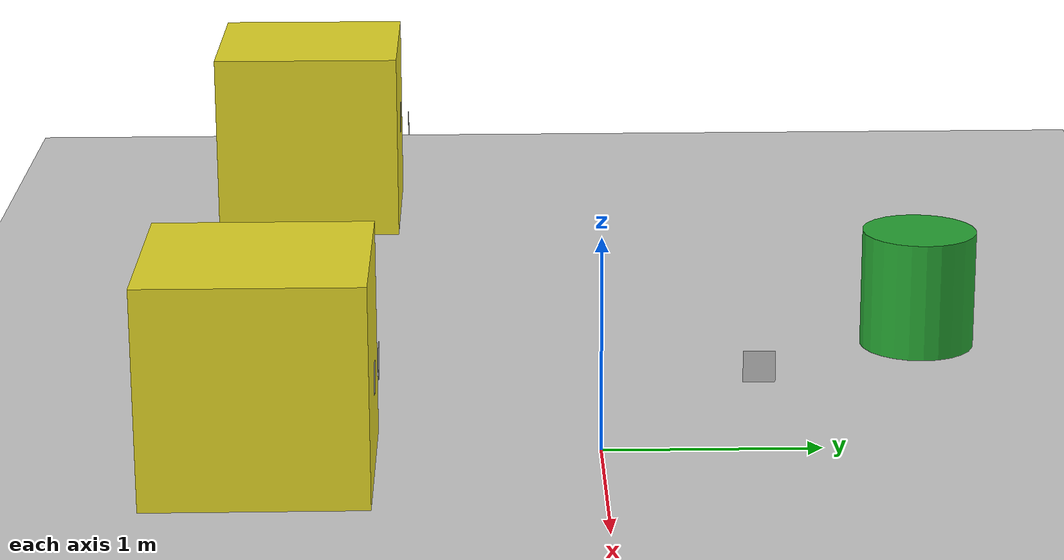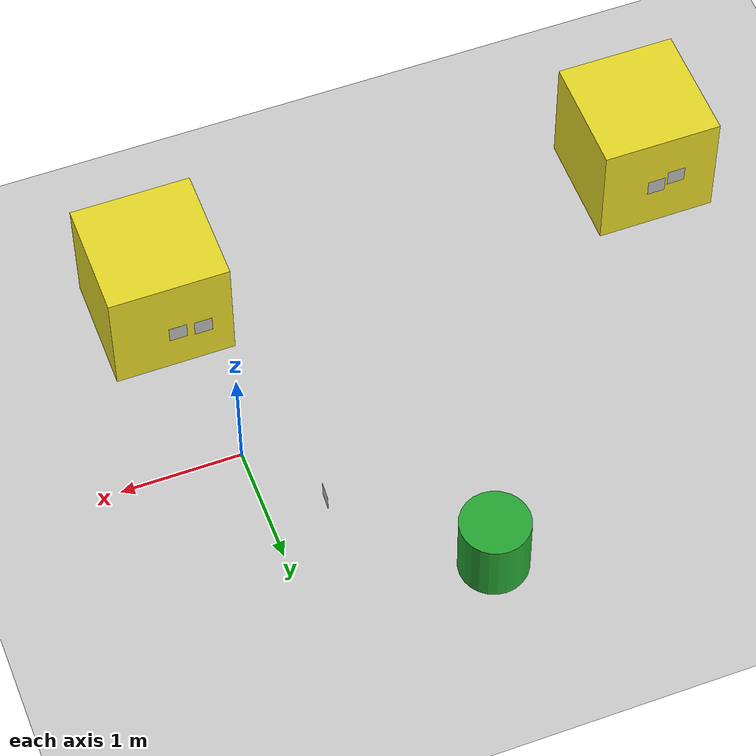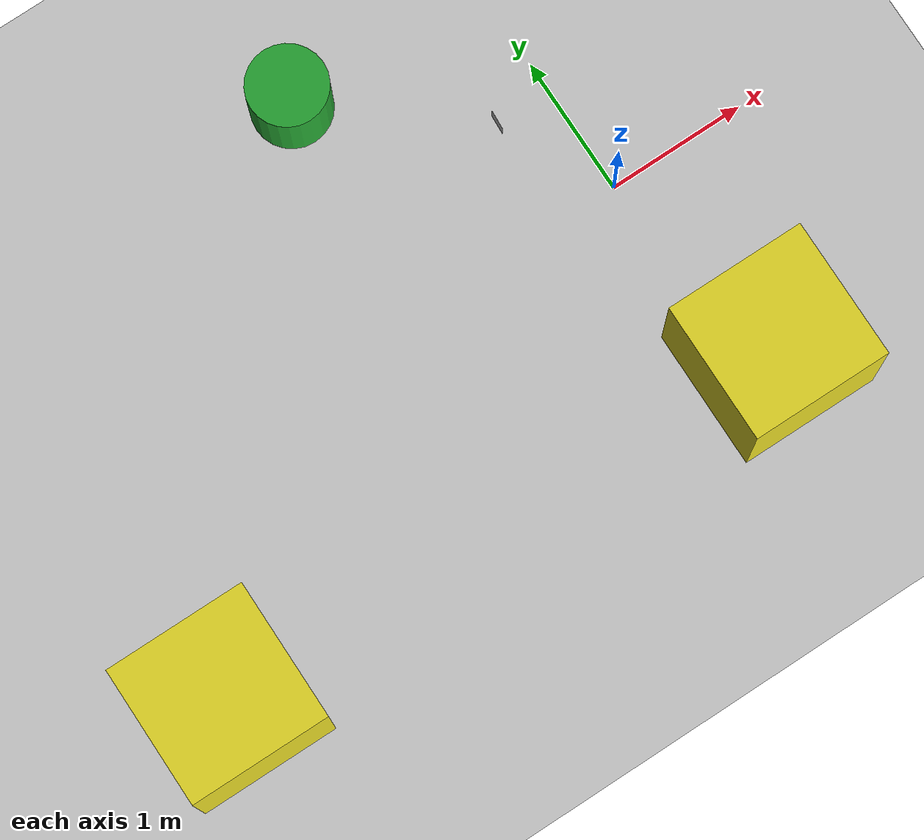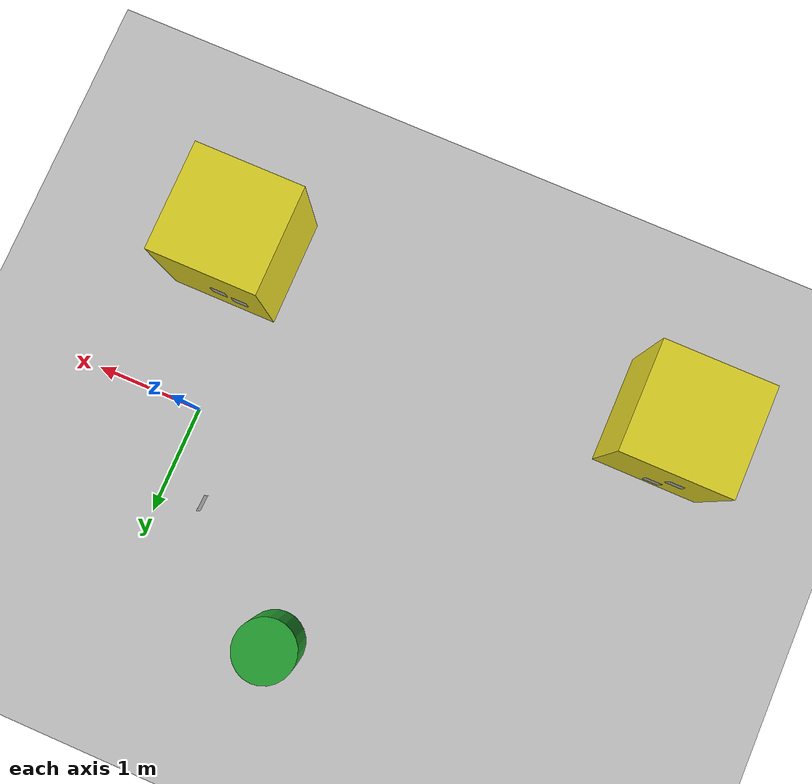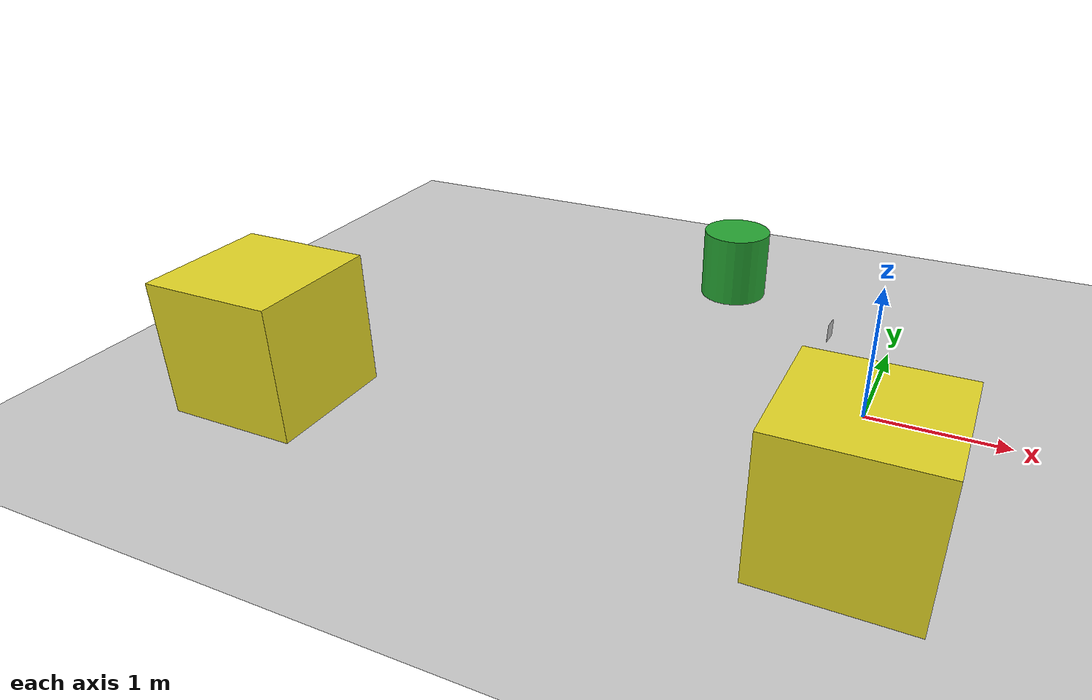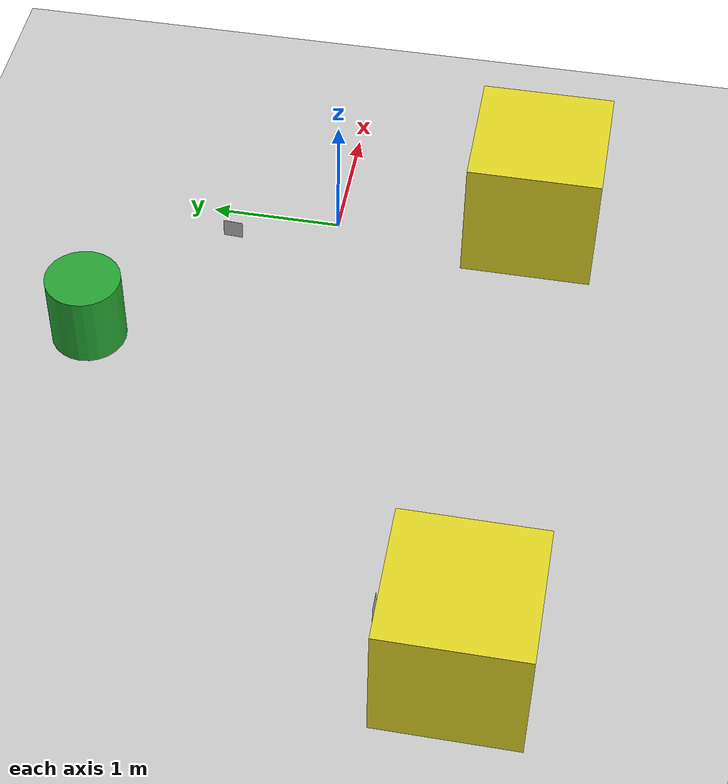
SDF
<sdf version="1.7">
 <world name="default">
  <model name="ground_plane">
   <static>1</static>
   <link name="link">
    <collision name="collision">
     <geometry><plane><normal>0 0 1</normal><size>100 100</size></plane></geometry>
     <surface><friction><ode><mu>100</mu><mu2>50</mu2></ode></friction></surface>
    </collision>
    <visual name="visual">
     <cast_shadows>0</cast_shadows>
     <geometry><plane><normal>0 0 1</normal><size>100 100</size></plane></geometry>
     <material>
      <script><uri>file://media/materials/scripts/gazebo.material</uri><name>Gazebo/Grey</name></script>
     </material>
    </visual>
   </link>
  </model>
  <model name="unit_cylinder_clone">
   <link name="link">
    <inertial>
     <mass>1</mass>
     <inertia><ixx>0.145833</ixx><ixy>0</ixy><ixz>0</ixz><iyy>0.145833</iyy><iyz>0</iyz><izz>0.125</izz></inertia>
    </inertial>
    <visual name="visual">
     <geometry><cylinder><radius>0.282119</radius><length>0.585064</length></cylinder></geometry>
     <material>
      <script><name>Gazebo/Green</name><uri>file://media/materials/scripts/gazebo.material</uri></script>
      <shader type="pixel"><normal_map>__default__</normal_map></shader>
      <ambient>0 1 0 1</ambient>
      <diffuse>0 1 0 1</diffuse>
      <specular>0.1 0.1 0.1 1</specular>
      <emissive>0 0 0 1</emissive>
     </material>
    </visual>
    <collision name="collision">
     <geometry><cylinder><radius>0.282119</radius><length>0.585064</length></cylinder></geometry>
     <surface>
      <friction>
       <ode><mu>1</mu><mu2>1</mu2><fdir1>0 0 0</fdir1><slip1>0</slip1><slip2>0</slip2></ode>
       <torsional>
        <coefficient>1</coefficient>
        <patch_radius>0</patch_radius>
        <surface_radius>0</surface_radius>
        <use_patch_radius>1</use_patch_radius>
        <ode><slip>0</slip></ode>
       </torsional>
      </friction>
      <bounce><restitution_coefficient>0</restitution_coefficient><threshold>1e+06</threshold></bounce>
      <contact>
       <collide_without_contact>0</collide_without_contact>
       <collide_without_contact_bitmask>1</collide_without_contact_bitmask>
       <collide_bitmask>1</collide_bitmask>
       <ode>
        <soft_cfm>0</soft_cfm>
        <soft_erp>0.2</soft_erp>
        <kp>1e+13</kp>
        <kd>1</kd>
        <max_vel>0.01</max_vel>
        <min_depth>0</min_depth>
       </ode>
       <bullet>
        <split_impulse>1</split_impulse>
        <split_impulse_penetration_threshold>-0.01</split_impulse_penetration_threshold>
        <soft_cfm>0</soft_cfm>
        <soft_erp>0.2</soft_erp>
        <kp>1e+13</kp>
        <kd>1</kd>
       </bullet>
      </contact>
     </surface>
    </collision>
   </link>
   <static>0</static>
   <pose>-1.48474 1.63121 0.292529 1e-06 1e-06 0</pose>
  </model>
  <model name="aruco_marker_1">
   <static>0</static>
   <link name="link">
    <gravity>0</gravity>
    <inertial>
     <mass>0.001</mass>
     <inertia>
      <ixx>3.75e-06</ixx>
      <ixy>0</ixy>
      <ixz>0</ixz>
      <iyy>1.875e-06</iyy>
      <iyz>0</iyz>
      <izz>1.875e-06</izz>
     </inertia>
    </inertial>
    <visual name="front_visual">
     <pose>5e-05 0 0 0 -0 0</pose>
     <geometry><box><size>0.0001 0.15 0.15</size></box></geometry>
     <material>
      <script>
       <uri>model://aruco_marker_1/materials/scripts</uri>
       <uri>model://aruco_marker_1/materials/textures</uri>
       <name>aruco_marker_1</name>
      </script>
     </material>
    </visual>
    <visual name="rear_visual">
     <pose>-5e-05 0 0 0 -0 0</pose>
     <geometry><box><size>0.0001 0.15 0.15</size></box></geometry>
    </visual>
    <collision name="collision"><geometry><box><size>0.0001 0.15 0.15</size></box></geometry></collision>
   </link>
   <pose>-3.93233 -0.941869 0.529613 0 -0 1.5707</pose>
  </model>
  <model name="aruco_marker_3">
   <static>0</static>
   <link name="link">
    <gravity>0</gravity>
    <inertial>
     <mass>0.001</mass>
     <inertia>
      <ixx>3.75e-06</ixx>
      <ixy>0</ixy>
      <ixz>0</ixz>
      <iyy>1.875e-06</iyy>
      <iyz>0</iyz>
      <izz>1.875e-06</izz>
     </inertia>
    </inertial>
    <visual name="front_visual">
     <pose>5e-05 0 0 0 -0 0</pose>
     <geometry><box><size>0.0001 0.15 0.15</size></box></geometry>
     <material>
      <script>
       <uri>model://aruco_marker_3/materials/scripts</uri>
       <uri>model://aruco_marker_3/materials/textures</uri>
       <name>aruco_marker_3</name>
      </script>
     </material>
    </visual>
    <visual name="rear_visual">
     <pose>-5e-05 0 0 0 -0 0</pose>
     <geometry><box><size>0.0001 0.15 0.15</size></box></geometry>
    </visual>
    <collision name="collision"><geometry><box><size>0.0001 0.15 0.15</size></box></geometry></collision>
   </link>
   <pose>-0.434132 0.7473 0.243428 0 -0 3.08344</pose>
  </model>
  <model name="unit_box">
   <link name="link">
    <inertial>
     <mass>1</mass>
     <inertia>
      <ixx>0.166667</ixx>
      <ixy>0</ixy>
      <ixz>0</ixz>
      <iyy>0.166667</iyy>
      <iyz>0</iyz>
      <izz>0.166667</izz>
     </inertia>
    </inertial>
    <visual name="visual">
     <geometry><box><size>1 1 1</size></box></geometry>
     <material>
      <script><name>Gazebo/Yellow</name><uri>file://media/materials/scripts/gazebo.material</uri></script>
      <shader type="pixel"><normal_map>__default__</normal_map></shader>
      <ambient>1 1 0 1</ambient>
      <diffuse>1 1 0 1</diffuse>
      <emissive>0 0 0 1</emissive>
     </material>
    </visual>
    <collision name="collision">
     <geometry><box><size>1 1 1</size></box></geometry>
     <surface>
      <friction>
       <ode><mu>1</mu><mu2>1</mu2><fdir1>0 0 0</fdir1><slip1>0</slip1><slip2>0</slip2></ode>
       <torsional>
        <coefficient>1</coefficient>
        <patch_radius>0</patch_radius>
        <surface_radius>0</surface_radius>
        <use_patch_radius>1</use_patch_radius>
        <ode><slip>0</slip></ode>
       </torsional>
      </friction>
      <bounce><restitution_coefficient>0</restitution_coefficient><threshold>1e+06</threshold></bounce>
      <contact>
       <collide_without_contact>0</collide_without_contact>
       <collide_without_contact_bitmask>1</collide_without_contact_bitmask>
       <collide_bitmask>1</collide_bitmask>
       <ode>
        <soft_cfm>0</soft_cfm>
        <soft_erp>0.2</soft_erp>
        <kp>1e+13</kp>
        <kd>1</kd>
        <max_vel>0.01</max_vel>
        <min_depth>0</min_depth>
       </ode>
       <bullet>
        <split_impulse>1</split_impulse>
        <split_impulse_penetration_threshold>-0.01</split_impulse_penetration_threshold>
        <soft_cfm>0</soft_cfm>
        <soft_erp>0.2</soft_erp>
        <kp>1e+13</kp>
        <kd>1</kd>
       </bullet>
      </contact>
     </surface>
    </collision>
   </link>
   <static>0</static>
   <pose>-3.98543 -1.495 0.499995 -1e-05 -0 -0.00133</pose>
  </model>
  <model name="unit_box_1">
   <link name="link">
    <inertial>
     <mass>1</mass>
     <inertia>
      <ixx>0.166667</ixx>
      <ixy>0</ixy>
      <ixz>0</ixz>
      <iyy>0.166667</iyy>
      <iyz>0</iyz>
      <izz>0.166667</izz>
     </inertia>
    </inertial>
    <visual name="visual">
     <geometry><box><size>1 1 1</size></box></geometry>
     <material>
      <script><name>Gazebo/Yellow</name><uri>file://media/materials/scripts/gazebo.material</uri></script>
      <shader type="pixel"><normal_map>__default__</normal_map></shader>
      <ambient>1 1 0 1</ambient>
      <diffuse>1 1 0 1</diffuse>
      <emissive>0 0 0 1</emissive>
     </material>
    </visual>
    <collision name="collision">
     <geometry><box><size>1 1 1</size></box></geometry>
     <surface>
      <friction>
       <ode><mu>1</mu><mu2>1</mu2><fdir1>0 0 0</fdir1><slip1>0</slip1><slip2>0</slip2></ode>
       <torsional>
        <coefficient>1</coefficient>
        <patch_radius>0</patch_radius>
        <surface_radius>0</surface_radius>
        <use_patch_radius>1</use_patch_radius>
        <ode><slip>0</slip></ode>
       </torsional>
      </friction>
      <bounce><restitution_coefficient>0</restitution_coefficient><threshold>1e+06</threshold></bounce>
      <contact>
       <collide_without_contact>0</collide_without_contact>
       <collide_without_contact_bitmask>1</collide_without_contact_bitmask>
       <collide_bitmask>1</collide_bitmask>
       <ode>
        <soft_cfm>0</soft_cfm>
        <soft_erp>0.2</soft_erp>
        <kp>1e+13</kp>
        <kd>1</kd>
        <max_vel>0.01</max_vel>
        <min_depth>0</min_depth>
       </ode>
       <bullet>
        <split_impulse>1</split_impulse>
        <split_impulse_penetration_threshold>-0.01</split_impulse_penetration_threshold>
        <soft_cfm>0</soft_cfm>
        <soft_erp>0.2</soft_erp>
        <kp>1e+13</kp>
        <kd>1</kd>
       </bullet>
      </contact>
     </surface>
    </collision>
   </link>
   <static>0</static>
   <pose>0.202358 -1.51469 0.499995 -1e-05 0 -0.001429</pose>
  </model>
  <model name="aruco_marker_1_clone">
   <static>0</static>
   <link name="link">
    <gravity>0</gravity>
    <inertial>
     <mass>0.001</mass>
     <inertia>
      <ixx>3.75e-06</ixx>
      <ixy>0</ixy>
      <ixz>0</ixz>
      <iyy>1.875e-06</iyy>
      <iyz>0</iyz>
      <izz>1.875e-06</izz>
     </inertia>
    </inertial>
    <visual name="front_visual">
     <pose>5e-05 0 0 0 -0 0</pose>
     <geometry><box><size>0.0001 0.15 0.15</size></box></geometry>
     <material>
      <script>
       <uri>model://aruco_marker_1/materials/scripts</uri>
       <uri>model://aruco_marker_1/materials/textures</uri>
       <name>aruco_marker_1</name>
      </script>
     </material>
    </visual>
    <visual name="rear_visual">
     <pose>-5e-05 0 0 0 -0 0</pose>
     <geometry><box><size>0.0001 0.15 0.15</size></box></geometry>
    </visual>
    <collision name="collision"><geometry><box><size>0.0001 0.15 0.15</size></box></geometry></collision>
   </link>
   <pose>-4.12977 -0.992253 0.515453 0 -0 1.5707</pose>
  </model>
  <model name="aruco_marker_0_clone">
   <static>0</static>
   <link name="link">
    <gravity>0</gravity>
    <inertial>
     <mass>0.001</mass>
     <inertia>
      <ixx>3.75e-06</ixx>
      <ixy>0</ixy>
      <ixz>0</ixz>
      <iyy>1.875e-06</iyy>
      <iyz>0</iyz>
      <izz>1.875e-06</izz>
     </inertia>
    </inertial>
    <visual name="front_visual">
     <pose>5e-05 0 0 0 -0 0</pose>
     <geometry><box><size>0.0001 0.15 0.15</size></box></geometry>
     <material>
      <script>
       <uri>model://aruco_marker_0/materials/scripts</uri>
       <uri>model://aruco_marker_0/materials/textures</uri>
       <name>aruco_marker_0</name>
      </script>
     </material>
    </visual>
    <visual name="rear_visual">
     <pose>-5e-05 0 0 0 -0 0</pose>
     <geometry><box><size>0.0001 0.15 0.15</size></box></geometry>
    </visual>
    <collision name="collision"><geometry><box><size>0.0001 0.15 0.15</size></box></geometry></collision>
   </link>
   <pose>0.165119 -1.00996 0.413849 0 -0 1.5707</pose>
  </model>
  <model name="aruco_marker_0_clone_0">
   <static>0</static>
   <link name="link">
    <gravity>0</gravity>
    <inertial>
     <mass>0.001</mass>
     <inertia>
      <ixx>3.75e-06</ixx>
      <ixy>0</ixy>
      <ixz>0</ixz>
      <iyy>1.875e-06</iyy>
      <iyz>0</iyz>
      <izz>1.875e-06</izz>
     </inertia>
    </inertial>
    <visual name="front_visual">
     <pose>5e-05 0 0 0 -0 0</pose>
     <geometry><box><size>0.0001 0.15 0.15</size></box></geometry>
     <material>
      <script>
       <uri>model://aruco_marker_0/materials/scripts</uri>
       <uri>model://aruco_marker_0/materials/textures</uri>
       <name>aruco_marker_0</name>
      </script>
     </material>
    </visual>
    <visual name="rear_visual">
     <pose>-5e-05 0 0 0 -0 0</pose>
     <geometry><box><size>0.0001 0.15 0.15</size></box></geometry>
    </visual>
    <collision name="collision"><geometry><box><size>0.0001 0.15 0.15</size></box></geometry></collision>
   </link>
   <pose>-0.042825 -0.998644 0.415056 0 -0 1.5707</pose>
  </model>
 </world>
</sdf>
